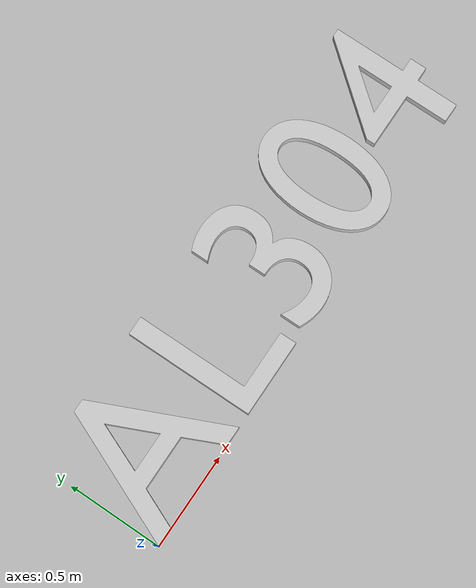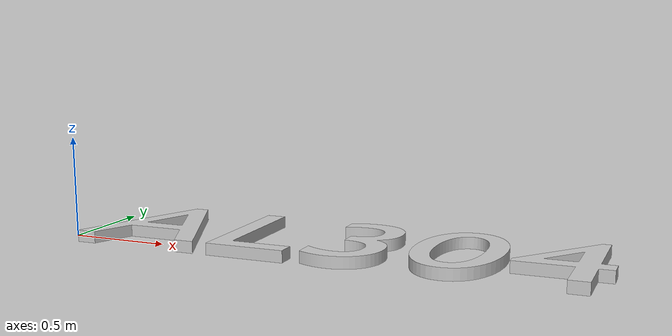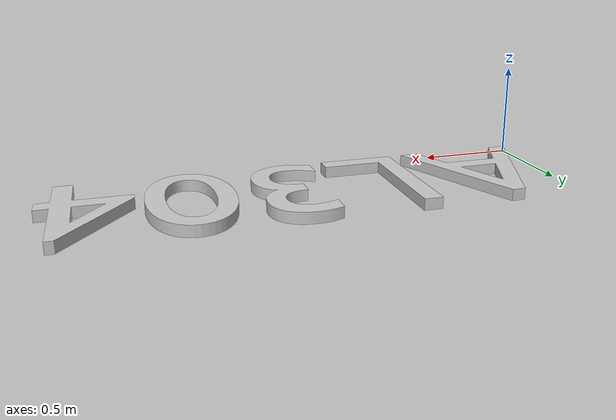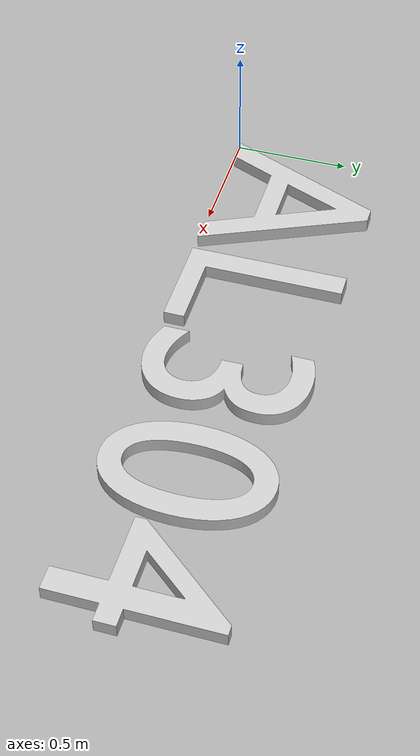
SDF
<?xml version='1.0'?>
    <sdf version='1.6'>
      <model name='AL304'>
        <link name='link'>
          <visual name='visual'>
            <geometry>
              <mesh>
                <uri>model://localros/text_3d_models/AL304/AL304.dae</uri>
              </mesh>
            </geometry>
          </visual>
        </link>
      </model>
    </sdf>
